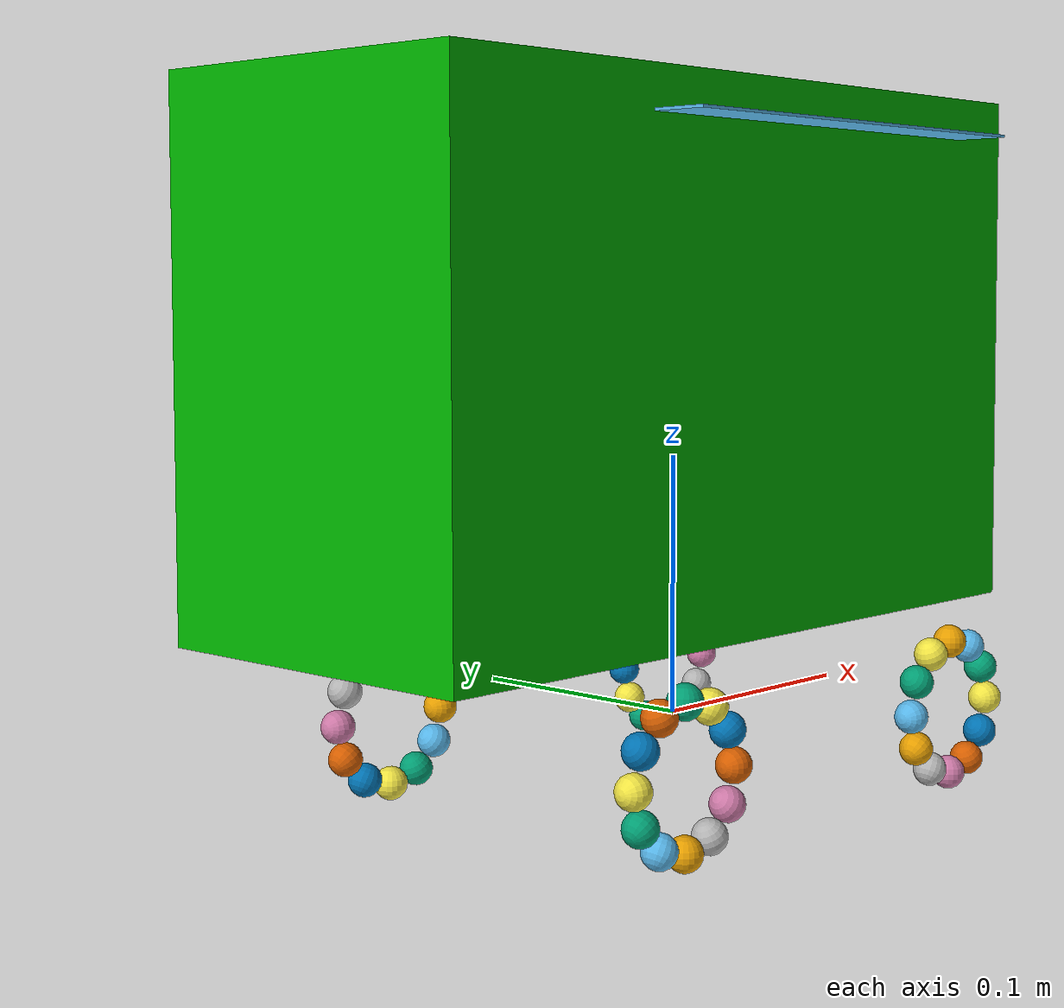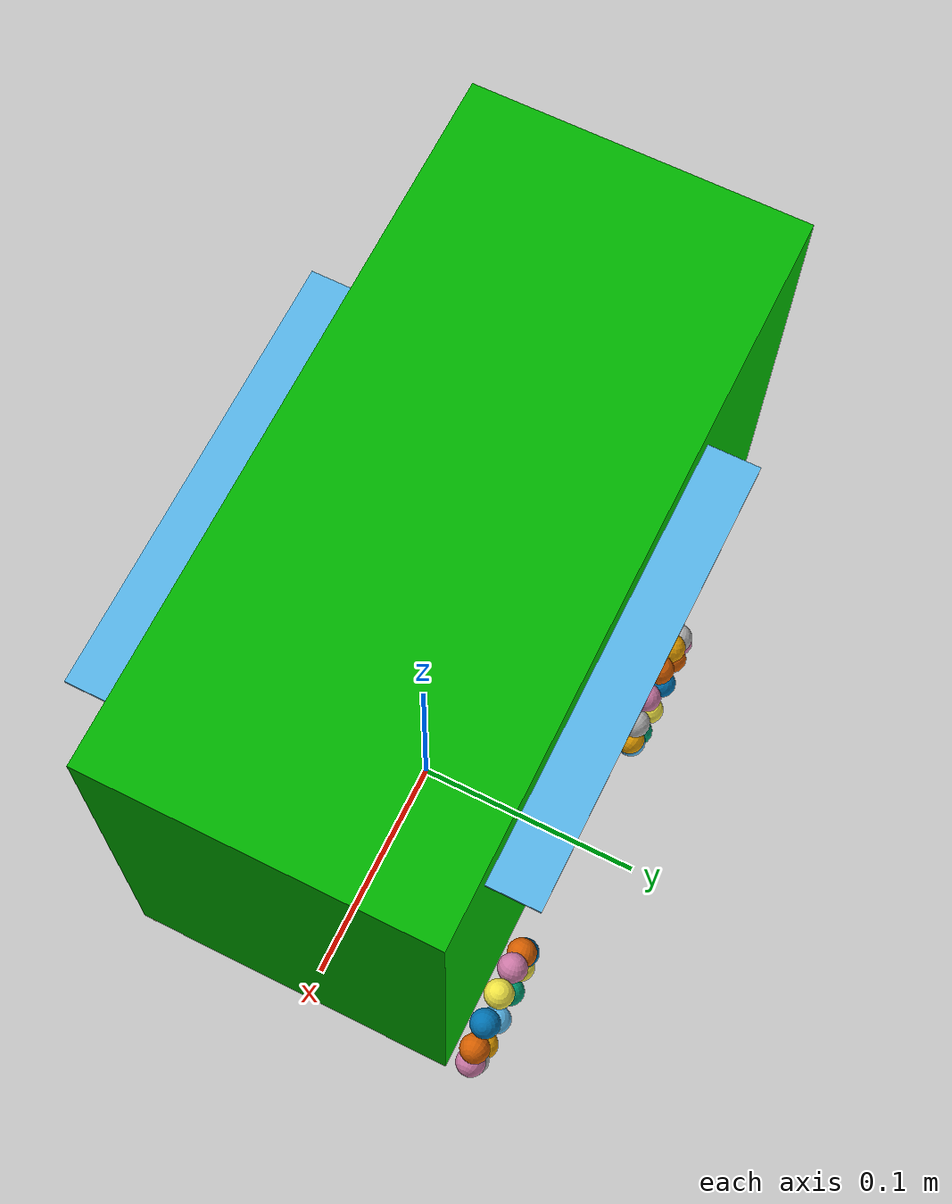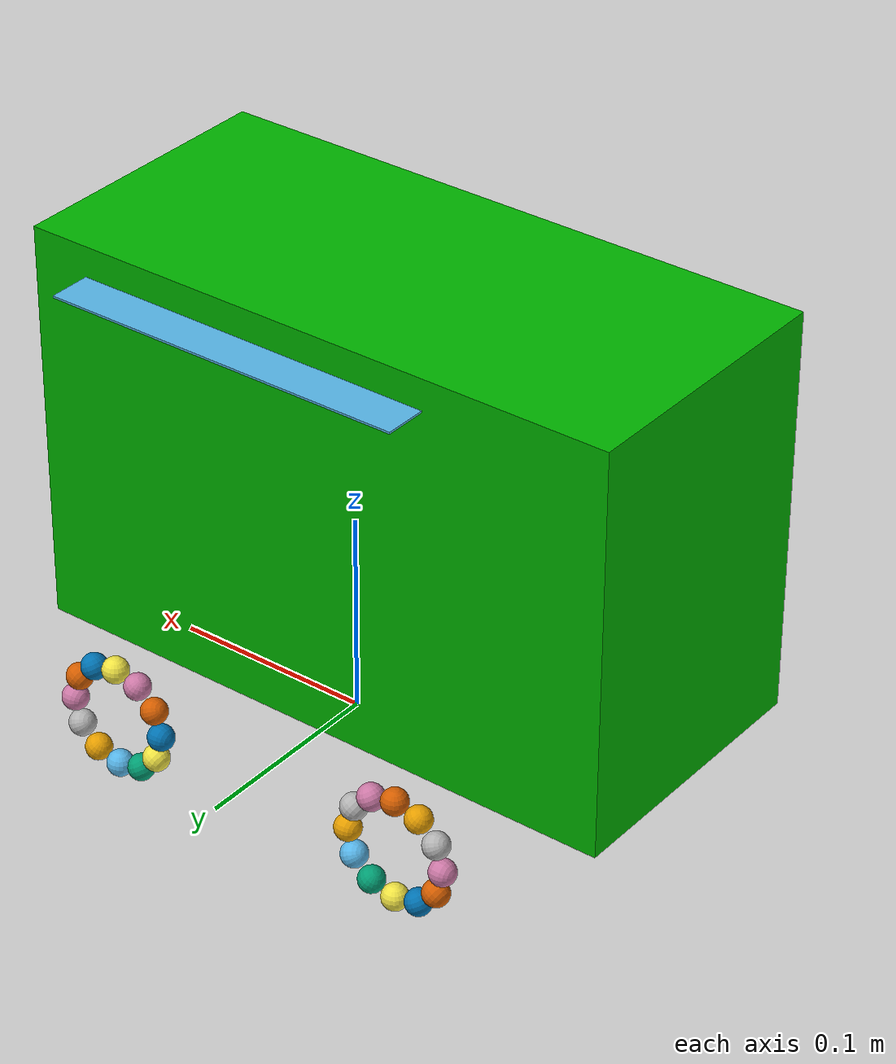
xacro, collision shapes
<?xml version="1.0"?>
<robot name="rosmaster_x3_aruco_pid" xmlns:xacro="http://www.ros.org/wiki/xacro">

    <xacro:property name="M_PI" value="3.1415926535897931" />
    <xacro:arg name="robot_name" default="rosmaster_x3"/>
    <xacro:arg name="prefix" default=""/>
    <xacro:arg name="use_gazebo" default="true"/>

    <!-- 1. Cargar las partes mecánicas y sensores base originales -->
    <xacro:include filename="$(find yahboom_rosmaster_description)/urdf/mech/rosmaster_x3_base.urdf.xacro"/>
    <xacro:include filename="$(find yahboom_rosmaster_description)/urdf/mech/mecanum_wheel.urdf.xacro"/>
    <xacro:include filename="$(find yahboom_rosmaster_description)/urdf/sensors/rgbd_camera.urdf.xacro"/>
    <xacro:include filename="$(find yahboom_rosmaster_description)/urdf/sensors/lidar.urdf.xacro"/>
    <xacro:include filename="$(find yahboom_rosmaster_description)/urdf/sensors/imu.urdf.xacro"/>

    <!-- Instanciar el chasis y las ruedas -->
    <xacro:rosmaster_x3_base prefix="$(arg prefix)"/>
    <xacro:mecanum_wheel prefix="$(arg prefix)" side="front_left" x_reflect="1" y_reflect="1"/>
    <xacro:mecanum_wheel prefix="$(arg prefix)" side="front_right" x_reflect="1" y_reflect="-1"/>
    <xacro:mecanum_wheel prefix="$(arg prefix)" side="back_left" x_reflect="-1" y_reflect="1"/>
    <xacro:mecanum_wheel prefix="$(arg prefix)" side="back_right" x_reflect="-1" y_reflect="-1"/>

    <!-- Instanciar sensores -->
    <xacro:rgbd_camera prefix="$(arg prefix)" camera_name="cam_1" xyz_offset="0.105 0 0.05" rpy_offset="0 0 0" update_rate="30.0" clip_far="50.0" />
    <xacro:lidar_sensor prefix="$(arg prefix)" parent="base_link" frame_id="laser_frame" xyz_offset="0 0 0.0825" rpy_offset="0 0 0" mesh_xyz_offset="0 0 0" mesh_rpy_offset="${-M_PI/2} 0 0" topic_name="scan"/>
    <xacro:imu_sensor prefix="$(arg prefix)" parent="base_link" frame_id="imu" xyz_offset="0 0 0.006" rpy_offset="0 0 0" update_rate="15.0" topic_name="imu/data"/>

    <!-- 2. ArUco del Carrito (Tu código original) -->
    <link name="techo_aruco_link">
        <visual>
            <geometry><box size="0.18 0.18 0.001" /></geometry>
        </visual>
        <collision>
            <geometry><box size="0.18 0.18 0.001" /></geometry>
        </collision>
        <inertial>
            <mass value="0.1" />
            <inertia ixx="0.001" ixy="0" ixz="0" iyy="0.001" iyz="0" izz="0.001" />
        </inertial>
    </link>
    <gazebo reference="techo_aruco_link">
        <visual>
            <material>
                <diffuse>1 1 1 1</diffuse>
                <pbr>
                    <metal>
                        <albedo_map>file://$(find mi_proyecto_sim)/models/marcador_aruco/materials/textures/aruco4.png</albedo_map>
                    </metal>
                </pbr>
            </material>
        </visual>
    </gazebo>
    <joint name="aruco_base_joint" type="fixed">
        <parent link="base_link" />
        <child link="techo_aruco_link" />
        <origin xyz="0 0 0.19" rpy="0 0 0" />
    </joint>

    <!-- 3. NUEVO: ros2_control habilitando Torques (Effort) para las 4 ruedas -->
    <ros2_control name="IgnitionSystem" type="system">
        <hardware>
            <plugin>ign_ros2_control/IgnitionSystem</plugin>
        </hardware>
        <joint name="front_left_wheel_joint">
            <command_interface name="effort"><param name="min">-2.5</param><param name="max">2.5</param></command_interface>
            <state_interface name="position"/>
            <state_interface name="velocity"/>
        </joint>
        <joint name="front_right_wheel_joint">
            <command_interface name="effort"><param name="min">-2.5</param><param name="max">2.5</param></command_interface>
            <state_interface name="position"/>
            <state_interface name="velocity"/>
        </joint>
        <joint name="back_left_wheel_joint">
            <command_interface name="effort"><param name="min">-2.5</param><param name="max">2.5</param></command_interface>
            <state_interface name="position"/>
            <state_interface name="velocity"/>
        </joint>
        <joint name="back_right_wheel_joint">
            <command_interface name="effort"><param name="min">-2.5</param><param name="max">2.5</param></command_interface>
            <state_interface name="position"/>
            <state_interface name="velocity"/>
        </joint>
    </ros2_control>

    <!-- 4. Plugins de Gazebo -->
    <gazebo>
        <!-- Plugin de ros2_control que lee el archivo yaml -->
        <plugin filename="ign_ros2_control-system" name="ign_ros2_control::IgnitionROS2ControlPlugin">
            <parameters>$(find mi_proyecto_sim)/config/controllers_pid.yaml</parameters>
        </plugin>

        <!-- Mantenemos el publicador de odometría base para que funcione RViz y SLAM -->
        <plugin filename="libignition-gazebo-odometry-publisher-system.so" name="ignition::gazebo::systems::OdometryPublisher">
            <odom_frame>odom</odom_frame>
            <robot_base_frame>base_footprint</robot_base_frame>
            <odom_publish_frequency>50</odom_publish_frequency>
            <dimensions>3</dimensions>
            <tf_topic>/model/rosmaster_x3/tf</tf_topic>
        </plugin>
    </gazebo>

</robot>

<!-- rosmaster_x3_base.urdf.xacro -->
<robot xmlns:xacro="http://www.ros.org/wiki/xacro">
<xacro:property name="total_width" value="0.19940" />
<xacro:property name="wheel_width" value="0.0304" />
<xacro:property name="wheel_radius" value="0.0325" />
<xacro:property name="total_height" value="0.26225" />
<xacro:property name="base_length" value="0.300" />
<xacro:property name="centered_length" value="0.238" />
<xacro:property name="base_x_offset" value="${(centered_length - base_length) / 2}" />
<xacro:property name="base_size_x" value="${base_length}" />
<xacro:property name="base_size_y" value="${total_width - (2 * wheel_width)}" />
<xacro:property name="base_size_z" value="${total_height - (2 * wheel_radius)}" />
<xacro:property name="base_mass" value="4.6" />

<xacro:macro name="rosmaster_x3_base" params="prefix">
  <link name="${prefix}base_footprint"/>
  <link name="${prefix}base_link">
    <visual>
        <geometry>
            <mesh filename="file://$(find yahboom_rosmaster_description)/meshes/rosmaster_x3/visual/base_link_X3.STL"/>
        </geometry>
        <material name="green">
          <color rgba="0 0.7 0 1"/>
        </material>
        <origin xyz="0 0 0" rpy="0 0 0"/>
    </visual>
    <collision>
        <geometry>
            <box size="${base_size_x} ${base_size_y} ${base_size_z}"/>
        </geometry>
        <origin xyz="${base_x_offset} 0 ${base_size_z/2 + wheel_radius/4}" rpy="0 0 0"/>
    </collision>
    <inertial>
        <!-- SIM-TO-REAL FIX: Centramos el CoM en X=0 y Y=0 para evitar que el robot rote al hacer strafe -->
        <origin xyz="0 0 ${base_size_z/2 + wheel_radius/4}" rpy="0 0 0"/>
        <mass value="${base_mass}"/>
        <inertia
            ixx="${(1/12) * base_mass * ((base_size_y * base_size_y) + (base_size_z * base_size_z))}" ixy="0.0" ixz="0.0"
            iyy="${(1/12) * base_mass * ((base_size_x * base_size_x) + (base_size_z * base_size_z))}" iyz="0.0"
            izz="${(1/12) * base_mass * ((base_size_x * base_size_x) + (base_size_y * base_size_y))}"/>
    </inertial>
  </link>
  <gazebo reference="${prefix}base_link">
    <visual>
        <material>
            <ambient>0 0.7 0 1</ambient>
            <diffuse>0 0.7 0 1</diffuse>
            <specular>0 0.7 0 1</specular>
        </material>
    </visual>
  </gazebo>
  <joint name="${prefix}base_joint" type="fixed">
    <parent link="${prefix}base_footprint"/>
    <child link="${prefix}base_link"/>
    <origin xyz="0 0 ${wheel_radius}" rpy="0 0 0"/>
  </joint>
</xacro:macro>
</robot>

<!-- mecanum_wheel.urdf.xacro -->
<robot xmlns:xacro="http://www.ros.org/wiki/xacro">

  <xacro:property name="wheel_radius" value="0.0325" />
  <xacro:property name="wheel_separation" value="0.169" />
  <xacro:property name="wheel_width" value="0.03040" />
  <xacro:property name="wheel_mass" value="0.15" />
  <xacro:property name="roller_mass" value="0.02" />
  <xacro:property name="roller_radius" value="0.0065" />
  <xacro:property name="wheel_xoff" value="0.08" />
  <xacro:property name="wheel_yoff" value="-0.01" />

  <xacro:macro name="mecanum_roller" params="prefix side index theta alpha">
    <link name="${prefix}${side}_roller_${index}_link">
      <collision>
        <origin xyz="0 0 0" rpy="0 0 0"/>
        <geometry>
          <sphere radius="${roller_radius}"/>
        </geometry>
        <max_contacts>2</max_contacts>
      </collision>
      <inertial>
        <mass value="${roller_mass}"/>
        <inertia ixx="${2.0/5.0 * roller_mass * roller_radius * roller_radius}" ixy="0" ixz="0"
                 iyy="${2.0/5.0 * roller_mass * roller_radius * roller_radius}" iyz="0"
                 izz="${2.0/5.0 * roller_mass * roller_radius * roller_radius}"/>
      </inertial>
    </link>

    <joint name="${prefix}${side}_roller_${index}_joint" type="continuous">
      <parent link="${prefix}${side}_wheel_link"/>
      <child link="${prefix}${side}_roller_${index}_link"/>
      <axis xyz="${sin(alpha)} ${cos(alpha)} 0"/>
      <origin xyz="${(wheel_radius - roller_radius)*sin(theta)} 0 ${(wheel_radius - roller_radius)*cos(theta)}" rpy="0 ${theta} 0"/>
      <dynamics damping="0.001" friction="0.001"/>
    </joint>

    <gazebo reference="${prefix}${side}_roller_${index}_link">
      <mu1>1.0</mu1>
      <mu2>1.0</mu2>
      <kp>10000.0</kp>
      <kd>10.0</kd>
      <minDepth>0.001</minDepth>
      <maxVel>1.0</maxVel>
      <self_collide>false</self_collide>
      <max_contacts>2</max_contacts>
    </gazebo>
  </xacro:macro>

  <xacro:macro name="mecanum_wheel" params="prefix side x_reflect y_reflect">
    <link name="${prefix}${side}_wheel_link">
      <visual>
        <origin xyz="0 0 0" rpy="${pi/2} 0 0"/>
        <geometry>
          <mesh filename="file://$(find yahboom_rosmaster_description)/meshes/rosmaster_x3/visual/${side}_wheel_X3.STL"/>
        </geometry>
        <material name="dark_gray">
          <color rgba="0.2 0.2 0.2 1.0"/>
        </material>
      </visual>

      <inertial>
        <origin xyz="0 0 0" rpy="0 0 0"/>
        <mass value="${wheel_mass}"/>
        <inertia
          ixx="${(wheel_mass/12.0) * (3*wheel_radius*wheel_radius + wheel_width*wheel_width)}" ixy="0" ixz="0"
          iyy="${(wheel_mass/2.0) * (wheel_radius*wheel_radius)}" iyz="0"
          izz="${(wheel_mass/12.0) * (3*wheel_radius*wheel_radius + wheel_width*wheel_width)}"/>
      </inertial>
    </link>

    <joint name="${prefix}${side}_wheel_joint" type="continuous">
      <axis xyz="0 1 0"/>
      <parent link="${prefix}base_link"/>
      <child link="${prefix}${side}_wheel_link"/>
      <origin xyz="${x_reflect*wheel_xoff} ${y_reflect*(wheel_separation/2+wheel_yoff)} ${-wheel_radius}" rpy="0 0 0"/>
      <dynamics damping="0.2" friction="0.1"/>
    </joint>

    <gazebo reference="${prefix}${side}_wheel_link">
      <visual>
          <material>
              <ambient>0.2 0.2 0.2 1.0</ambient>
              <diffuse>0.2 0.2 0.2 1.0</diffuse>
          </material>
      </visual>
      <self_collide>false</self_collide>
    </gazebo>

    <xacro:property name="alpha" value="${(x_reflect * y_reflect) * (pi / 4)}" />

    <xacro:mecanum_roller prefix="${prefix}" side="${side}" index="0" theta="0.0" alpha="${alpha}" />
    <xacro:mecanum_roller prefix="${prefix}" side="${side}" index="1" theta="${pi/6}" alpha="${alpha}" />
    <xacro:mecanum_roller prefix="${prefix}" side="${side}" index="2" theta="${2*pi/6}" alpha="${alpha}" />
    <xacro:mecanum_roller prefix="${prefix}" side="${side}" index="3" theta="${3*pi/6}" alpha="${alpha}" />
    <xacro:mecanum_roller prefix="${prefix}" side="${side}" index="4" theta="${4*pi/6}" alpha="${alpha}" />
    <xacro:mecanum_roller prefix="${prefix}" side="${side}" index="5" theta="${5*pi/6}" alpha="${alpha}" />
    <xacro:mecanum_roller prefix="${prefix}" side="${side}" index="6" theta="${6*pi/6}" alpha="${alpha}" />
    <xacro:mecanum_roller prefix="${prefix}" side="${side}" index="7" theta="${7*pi/6}" alpha="${alpha}" />
    <xacro:mecanum_roller prefix="${prefix}" side="${side}" index="8" theta="${8*pi/6}" alpha="${alpha}" />
    <xacro:mecanum_roller prefix="${prefix}" side="${side}" index="9" theta="${9*pi/6}" alpha="${alpha}" />
    <xacro:mecanum_roller prefix="${prefix}" side="${side}" index="10" theta="${10*pi/6}" alpha="${alpha}" />
    <xacro:mecanum_roller prefix="${prefix}" side="${side}" index="11" theta="${11*pi/6}" alpha="${alpha}" />

  </xacro:macro>
</robot>

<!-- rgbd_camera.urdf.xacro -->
<robot xmlns:xacro="http://www.ros.org/wiki/xacro">

  <xacro:property name="M_PI" value="3.1415926535897931" />

  <xacro:macro name="rgbd_camera" params="
    frame_prefix:=''
    camera_name:='cam_1'
    parent:='base_link'
    mesh_file:='file://$(find yahboom_rosmaster_description)/meshes/intel_realsense/visual/d435.stl'
    xyz_offset:='0.105 0 0.05'
    rpy_offset:='0 -0.50 0'
    mesh_xyz_offset:='0 0 0'
    mesh_rpy_offset:='${M_PI/2} 0.0 ${M_PI/2}'
    collision_xyz_offset:='0 0 0'
    collision_rpy_offset:='0 0 0'
    inertial_xyz_offset:='0 0 0'
    inertial_rpy_offset:='0 0 0'
    optical_xyz_offset:='0 0 0'
    optical_rpy_offset:='0 ${-M_PI/2} ${-M_PI/2}'
    depth_frame_xyz_offset:='0 0 0'
    depth_frame_rpy_offset:='0 0 0'
    infra1_xyz_offset:='0 0 0'
    infra1_rpy_offset:='0 0 0'
    infra2_xyz_offset:='0 -0.05 0'
    infra2_rpy_offset:='0 0 0'
    color_xyz_offset:='0 0.015 0'
    color_rpy_offset:='0 0 0'
    cam_width:=0.090
    cam_height:=0.025
    cam_depth:=0.02505
    mass:=0.072
    ixx:=0.003881243
    ixy:=0.0
    ixz:=0.0
    iyy:=0.000498940
    iyz:=0.0
    izz:=0.003879257
    material_name:='aluminum'
    material_color:='0.5 0.5 0.5 1'
    horizontal_fov:=1.5184
    image_width:=424
    image_height:=240
    clip_near:=0.05
    clip_far:=1.5
    update_rate:=2
    always_on:=1
    visualize:=true
    enable_collision:=false">

    <link name="${frame_prefix}${camera_name}_link">
      <visual>
        <origin xyz="${mesh_xyz_offset}" rpy="${mesh_rpy_offset}"/>
        <geometry>
          <mesh filename="${mesh_file}" />
        </geometry>
        <material name="${material_name}">
          <color rgba="${material_color}"/>
        </material>
      </visual>
      <xacro:if value="${enable_collision}">
        <collision>
          <origin xyz="${collision_xyz_offset}" rpy="${collision_rpy_offset}"/>
          <geometry>
            <box size="${cam_depth} ${cam_width} ${cam_height}"/>
          </geometry>
        </collision>
      </xacro:if>
      <inertial>
        <mass value="${mass}" />
        <origin xyz="${inertial_xyz_offset}" rpy="${inertial_rpy_offset}"/>
        <inertia ixx="${ixx}" ixy="${ixy}" ixz="${ixz}"
                 iyy="${iyy}" iyz="${iyz}" izz="${izz}" />
      </inertial>
    </link>

    <joint name="${frame_prefix}${camera_name}_joint" type="fixed">
      <parent link="${frame_prefix}${parent}"/>
      <child link="${frame_prefix}${camera_name}_link" />
      <origin xyz="${xyz_offset}" rpy="${rpy_offset}"/>
    </joint>

    <joint name="${frame_prefix}${camera_name}_depth_joint" type="fixed">
      <origin xyz="${depth_frame_xyz_offset}" rpy="${depth_frame_rpy_offset}"/>
      <parent link="${frame_prefix}${camera_name}_link"/>
      <child link="${frame_prefix}${camera_name}_depth_frame" />
    </joint>
    <link name="${frame_prefix}${camera_name}_depth_frame"/>

    <joint name="${frame_prefix}${camera_name}_depth_optical_joint" type="fixed">
      <origin xyz="${optical_xyz_offset}" rpy="${optical_rpy_offset}" />
      <parent link="${frame_prefix}${camera_name}_depth_frame" />
      <child link="${frame_prefix}${camera_name}_depth_optical_frame" />
    </joint>
    <link name="${frame_prefix}${camera_name}_depth_optical_frame"/>

    <joint name="${frame_prefix}${camera_name}_infra1_joint" type="fixed">
      <origin xyz="${infra1_xyz_offset}" rpy="${infra1_rpy_offset}" />
      <parent link="${frame_prefix}${camera_name}_link" />
      <child link="${frame_prefix}${camera_name}_infra1_frame" />
    </joint>
    <link name="${frame_prefix}${camera_name}_infra1_frame"/>

    <joint name="${frame_prefix}${camera_name}_infra1_optical_joint" type="fixed">
      <origin xyz="${optical_xyz_offset}" rpy="${optical_rpy_offset}" />
      <parent link="${frame_prefix}${camera_name}_infra1_frame" />
      <child link="${frame_prefix}${camera_name}_infra1_optical_frame" />
    </joint>
    <link name="${frame_prefix}${camera_name}_infra1_optical_frame"/>

    <joint name="${frame_prefix}${camera_name}_infra2_joint" type="fixed">
      <origin xyz="${infra2_xyz_offset}" rpy="${infra2_rpy_offset}" />
      <parent link="${frame_prefix}${camera_name}_link" />
      <child link="${frame_prefix}${camera_name}_infra2_frame" />
    </joint>
    <link name="${frame_prefix}${camera_name}_infra2_frame"/>

    <joint name="${frame_prefix}${camera_name}_infra2_optical_joint" type="fixed">
      <origin xyz="${optical_xyz_offset}" rpy="${optical_rpy_offset}" />
      <parent link="${frame_prefix}${camera_name}_infra2_frame" />
      <child link="${frame_prefix}${camera_name}_infra2_optical_frame" />
    </joint>
    <link name="${frame_prefix}${camera_name}_infra2_optical_frame"/>

    <joint name="${frame_prefix}${camera_name}_color_joint" type="fixed">
      <origin xyz="${color_xyz_offset}" rpy="${color_rpy_offset}" />
      <parent link="${frame_prefix}${camera_name}_link" />
      <child link="${frame_prefix}${camera_name}_color_frame" />
    </joint>
    <link name="${frame_prefix}${camera_name}_color_frame"/>

    <joint name="${frame_prefix}${camera_name}_color_optical_joint" type="fixed">
      <origin xyz="${optical_xyz_offset}" rpy="${optical_rpy_offset}" />
      <parent link="${frame_prefix}${camera_name}_color_frame" />
      <child link="${frame_prefix}${camera_name}_color_optical_frame" />
    </joint>
    <link name="${frame_prefix}${camera_name}_color_optical_frame"/>

    <gazebo reference="${frame_prefix}${camera_name}_link">
      <sensor name="${frame_prefix}${camera_name}" type="rgbd_camera">
        <camera>
          <horizontal_fov>${horizontal_fov}</horizontal_fov>
          <image>
            <width>${image_width}</width>
            <height>${image_height}</height>
          </image>
          <clip>
            <near>${clip_near}</near>
            <far>${clip_far}</far>
          </clip>
        </camera>
        <always_on>${always_on}</always_on>
        <gz_frame_id>${frame_prefix}${camera_name}_depth_optical_frame</gz_frame_id>
        <topic>${frame_prefix}${camera_name}</topic>
        <update_rate>${update_rate}</update_rate>
        <visualize>${visualize}</visualize>
      </sensor>
    </gazebo>

  </xacro:macro>
</robot>

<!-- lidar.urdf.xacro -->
<robot xmlns:xacro="http://www.ros.org/wiki/xacro">
  <xacro:property name="M_PI" value="3.1415926535897931" />

  <xacro:macro name="lidar_sensor" params="
    frame_prefix:=''
    parent:='base_link'
    frame_id:='laser_frame'
    mesh_file:='file://$(find yahboom_rosmaster_description)/meshes/rplidar/rplidar_s2.stl'
    xyz_offset:='0 0 0.0825'
    rpy_offset:='0 0 0'
    mesh_xyz_offset:='0 0 0'
    mesh_rpy_offset:='${-M_PI/2} 0 0'
    mesh_scale:='0.001 0.001 0.001'
    collision_xyz_offset:='0 0 0'
    collision_rpy_offset:='0 0 0'
    inertial_xyz_offset:='0 0 0'
    inertial_rpy_offset:='0 0 0'
    lidar_width:=0.077
    lidar_height:=0.0398
    mass:=0.185
    material_name:='rplidar_black'
    material_color:='0.1 0.1 0.1 1'
    gazebo_material_ambient:='0.1 0.1 0.1 1'
    gazebo_material_diffuse:='0.1 0.1 0.1 1'
    gazebo_material_specular:='0.1 0.1 0.1 1'
    update_rate:=10
    ray_count:=720
    min_angle:='-3.14159'
    max_angle:='3.14159'
    min_range:='0.20'
    max_range:='30.0'
    range_resolution:='0.013'
    topic_name:='scan'
    always_on:=true
    visualize:=false
    enable_collision:=false">

    <xacro:property name="radius" value="${lidar_width/2}" />
    <xacro:property name="ixx_iyy" value="${(mass/12) * (3 * radius * radius + lidar_height * lidar_height)}" />
    <xacro:property name="izz" value="${(mass/2) * (radius * radius)}" />

    <link name="${frame_prefix}${frame_id}">
      <visual>
        <origin xyz="${mesh_xyz_offset}" rpy="${mesh_rpy_offset}"/>
        <geometry>
          <mesh filename="${mesh_file}" scale="${mesh_scale}"/>
        </geometry>
        <material name="${material_name}">
          <color rgba="${material_color}"/>
        </material>
      </visual>

      <xacro:if value="${enable_collision}">
        <collision>
          <origin xyz="${collision_xyz_offset}" rpy="${collision_rpy_offset}"/>
          <geometry>
            <cylinder radius="${lidar_width/2}" length="${lidar_height}"/>
          </geometry>
        </collision>
      </xacro:if>

      <inertial>
        <mass value="${mass}" />
        <origin xyz="${inertial_xyz_offset}" rpy="${inertial_rpy_offset}"/>
        <inertia
          ixx="${ixx_iyy}"
          ixy="0.0"
          ixz="0.0"
          iyy="${ixx_iyy}"
          iyz="0.0"
          izz="${izz}" />
      </inertial>
    </link>

    <joint name="${frame_prefix}${frame_id}_joint" type="fixed">
      <parent link="${frame_prefix}${parent}"/>
      <child link="${frame_prefix}${frame_id}" />
      <origin xyz="${xyz_offset}" rpy="${rpy_offset}"/>
    </joint>

    <gazebo reference="${frame_prefix}${frame_id}">
      <material>
        <ambient>${gazebo_material_ambient}</ambient>
        <diffuse>${gazebo_material_diffuse}</diffuse>
        <specular>${gazebo_material_specular}</specular>
      </material>
      <sensor name="${frame_prefix}lidar_sensor" type="gpu_lidar">
        <topic>${frame_prefix}${topic_name}</topic>
        <update_rate>${update_rate}</update_rate>
        <always_on>${always_on}</always_on>
        <visualize>${visualize}</visualize>
        <ray>
          <scan>
            <horizontal>
              <samples>${ray_count}</samples>
              <resolution>1</resolution>
              <min_angle>${min_angle}</min_angle>
              <max_angle>${max_angle}</max_angle>
            </horizontal>
            <vertical>
              <samples>1</samples>
              <resolution>1</resolution>
              <min_angle>0</min_angle>
              <max_angle>0</max_angle>
            </vertical>
          </scan>
          <range>
            <min>${min_range}</min>
            <max>${max_range}</max>
            <resolution>${range_resolution}</resolution>
          </range>
        </ray>
        <gz_frame_id>${frame_prefix}${frame_id}</gz_frame_id>
      </sensor>
    </gazebo>
  </xacro:macro>
</robot>

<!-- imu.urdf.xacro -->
<robot xmlns:xacro="http://www.ros.org/wiki/xacro">
    <xacro:property name="M_PI" value="3.1415926535897931" />

    <xacro:macro name="imu_sensor" params="
        frame_prefix:=''
        parent:='base_link'
        frame_id:='imu'
        xyz_offset:='0 0 0'
        rpy_offset:='0 0 0'
        inertial_xyz_offset:='0 0 0'
        inertial_rpy_offset:='0 0 0'
        mass:=0.031
        length:=0.03899
        width:=0.03785
        height:=0.01338
        material_name:='imu_black'
        material_color:='0.1 0.1 0.1 1'
        gazebo_material_ambient:='0.1 0.1 0.1 1'
        gazebo_material_diffuse:='0.1 0.1 0.1 1'
        gazebo_material_specular:='0.1 0.1 0.1 1'
        update_rate:='15.0'
        topic_name:='imu/data'
        always_on:=true
        visualize:=false">

        <xacro:property name="ixx" value="${(mass/12.0) * (height*height + width*width)}" />
        <xacro:property name="iyy" value="${(mass/12.0) * (length*length + height*height)}" />
        <xacro:property name="izz" value="${(mass/12.0) * (length*length + width*width)}" />

        <link name="${frame_prefix}${frame_id}_link">
            <visual>
                <origin xyz="0 0 0" rpy="0 0 0"/>
                <geometry>
                    <box size="${length} ${width} ${height}"/>
                </geometry>
                <material name="${material_name}">
                    <color rgba="${material_color}"/>
                </material>
            </visual>

            <inertial>
                <mass value="${mass}" />
                <origin xyz="${inertial_xyz_offset}" rpy="${inertial_rpy_offset}"/>
                <inertia
                    ixx="${ixx}"
                    ixy="0.0"
                    ixz="0.0"
                    iyy="${iyy}"
                    iyz="0.0"
                    izz="${izz}" />
            </inertial>
        </link>

        <joint name="${frame_prefix}${frame_id}_joint" type="fixed">
            <parent link="${frame_prefix}${parent}"/>
            <child link="${frame_prefix}${frame_id}_link" />
            <origin xyz="${xyz_offset}" rpy="${rpy_offset}"/>
        </joint>

        <gazebo reference="${frame_prefix}${frame_id}_link">
            <material>
                <ambient>${gazebo_material_ambient}</ambient>
                <diffuse>${gazebo_material_diffuse}</diffuse>
                <specular>${gazebo_material_specular}</specular>
            </material>
            <sensor name="${frame_prefix}imu_sensor" type="imu">
                <topic>${frame_prefix}${topic_name}</topic>
                <update_rate>${update_rate}</update_rate>
                <always_on>${always_on}</always_on>
                <visualize>${visualize}</visualize>
                <gz_frame_id>${frame_prefix}${frame_id}_link</gz_frame_id>
            </sensor>
        </gazebo>
    </xacro:macro>
</robot>
